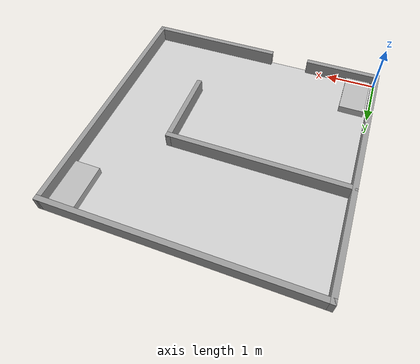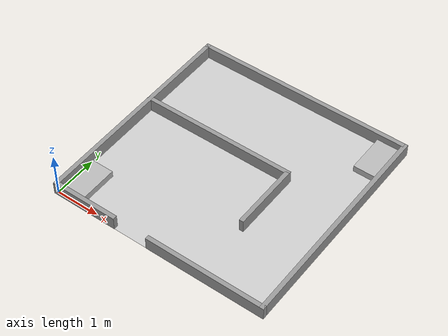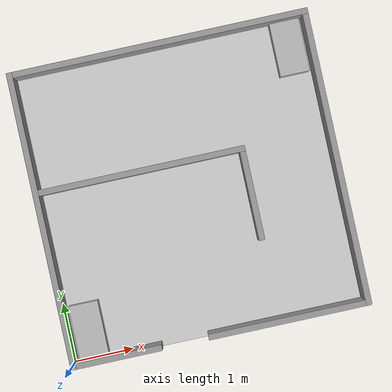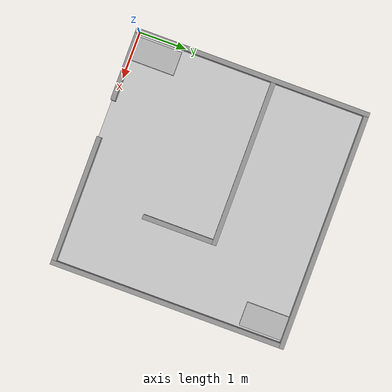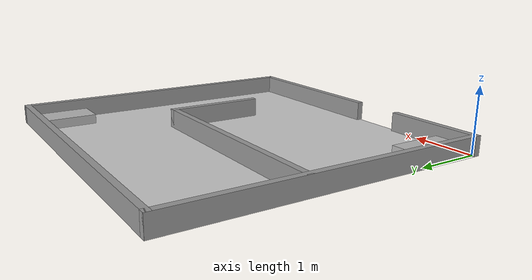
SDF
<sdf version="1.6">
 <world name="default">
  <light name="sun" type="directional">
   <pose>0 0 10 0 -0 0</pose>
   <diffuse>0.8 0.8 0.8 1</diffuse>
   <specular>0.2 0.2 0.2 1</specular>
   <attenuation>
    <range>1000</range>
    <constant>0.9</constant>
    <linear>0.01</linear>
    <quadratic>0.001</quadratic>
   </attenuation>
   <direction>-0.5 0.1 -0.9</direction>
  </light>
  <gravity>0 0 -9.8</gravity>
  <magnetic_field>6e-06 2.3e-05 -4.2e-05</magnetic_field>
  <atmosphere type="adiabatic"/>
  <physics name="default_physics" default="0" type="ode">
   <max_step_size>0.001</max_step_size>
   <real_time_factor>1</real_time_factor>
   <real_time_update_rate>1000</real_time_update_rate>
  </physics>
  <scene><ambient>0.4 0.4 0.4 1</ambient><background>0.7 0.7 0.7 1</background><shadows>1</shadows></scene>
  <audio><device>default</device></audio>
  <spherical_coordinates>
   <surface_model>EARTH_WGS84</surface_model>
   <latitude_deg>0</latitude_deg>
   <longitude_deg>0</longitude_deg>
   <elevation>0</elevation>
   <heading_deg>0</heading_deg>
  </spherical_coordinates>
  <model name="base_structure_5x5">
   <pose>2.49962 2.44211 0 0 -0 0</pose>
   <link name="Wall_0">
    <collision name="Wall_0_Collision">
     <geometry><box><size>5.03 0.1 0.3</size></box></geometry>
     <pose>0 0 0.15 0 -0 0</pose>
    </collision>
    <visual name="Wall_0_Visual">
     <pose>0 0 0.15 0 -0 0</pose>
     <geometry><box><size>5.03 0.1 0.3</size></box></geometry>
     <material>
      <script><uri>file://media/materials/scripts/gazebo.material</uri><name>Gazebo/Grey</name></script>
      <ambient>1 1 1 1</ambient>
     </material>
     <meta><layer>0</layer></meta>
    </visual>
    <pose>-2.5 0 0 0 -0 1.5708</pose>
   </link>
   <link name="Wall_2">
    <collision name="Wall_2_Collision">
     <geometry><box><size>5.1 0.1 0.3</size></box></geometry>
     <pose>0 0 0.15 0 -0 0</pose>
    </collision>
    <visual name="Wall_2_Visual">
     <pose>0 0 0.15 0 -0 0</pose>
     <geometry><box><size>5.1 0.1 0.3</size></box></geometry>
     <material>
      <script><uri>file://media/materials/scripts/gazebo.material</uri><name>Gazebo/Grey</name></script>
      <ambient>1 1 1 1</ambient>
     </material>
     <meta><layer>0</layer></meta>
    </visual>
    <pose>0 2.465 0 0 -0 0</pose>
   </link>
   <link name="Wall_3">
    <collision name="Wall_3_Collision">
     <geometry><box><size>5.03 0.1 0.3</size></box></geometry>
     <pose>0 0 0.15 0 -0 0</pose>
    </collision>
    <visual name="Wall_3_Visual">
     <pose>0 0 0.15 0 -0 0</pose>
     <geometry><box><size>5.03 0.1 0.3</size></box></geometry>
     <material>
      <script><uri>file://media/materials/scripts/gazebo.material</uri><name>Gazebo/Grey</name></script>
      <ambient>1 1 1 1</ambient>
     </material>
     <meta><layer>0</layer></meta>
    </visual>
    <pose>2.5 0 0 0 -0 -1.5708</pose>
   </link>
   <link name="Wall_4">
    <collision name="Wall_4_Collision">
     <geometry><box><size>2.76 0.1 0.3</size></box></geometry>
     <pose>0 0 0.15 0 -0 0</pose>
    </collision>
    <visual name="Wall_4_Visual">
     <pose>0 0 0.15 0 -0 0</pose>
     <geometry><box><size>2.76 0.1 0.3</size></box></geometry>
     <material>
      <script><uri>file://media/materials/scripts/gazebo.material</uri><name>Gazebo/Grey</name></script>
      <ambient>1 1 1 1</ambient>
     </material>
     <meta><layer>0</layer></meta>
    </visual>
    <pose>1.17 -2.465 0 0 -0 3.14159</pose>
   </link>
   <link name="Wall_6">
    <collision name="Wall_6_Collision">
     <geometry><box><size>1.55 0.1 0.3</size></box></geometry>
     <pose>0 0 0.15 0 -0 0</pose>
    </collision>
    <visual name="Wall_6_Visual">
     <pose>0 0 0.15 0 -0 0</pose>
     <geometry><box><size>1.55 0.1 0.3</size></box></geometry>
     <material>
      <script><uri>file://media/materials/scripts/gazebo.material</uri><name>Gazebo/Grey</name></script>
      <ambient>1 1 1 1</ambient>
     </material>
     <meta><layer>0</layer></meta>
    </visual>
    <pose>-1.775 -2.465 0 0 -0 0</pose>
   </link>
   <link name="Wall_8">
    <collision name="Wall_8_Collision">
     <geometry><box><size>3.6 0.1 0.3</size></box></geometry>
     <pose>0 0 0.15 0 -0 0</pose>
    </collision>
    <visual name="Wall_8_Visual">
     <pose>0 0 0.15 0 -0 0</pose>
     <geometry><box><size>3.6 0.1 0.3</size></box></geometry>
     <material>
      <script><uri>file://media/materials/scripts/gazebo.material</uri><name>Gazebo/Grey</name></script>
      <ambient>1 1 1 1</ambient>
     </material>
     <meta><layer>0</layer></meta>
    </visual>
    <pose>-0.75 0.465 0 0 -0 0</pose>
   </link>
   <link name="Wall_9">
    <collision name="Wall_9_Collision">
     <geometry><box><size>1.6 0.1 0.3</size></box></geometry>
     <pose>0 0 0.15 0 -0 0</pose>
    </collision>
    <visual name="Wall_9_Visual">
     <pose>0 0 0.15 0 -0 0</pose>
     <geometry><box><size>1.6 0.1 0.3</size></box></geometry>
     <material>
      <script><uri>file://media/materials/scripts/gazebo.material</uri><name>Gazebo/Grey</name></script>
      <ambient>1 1 1 1</ambient>
     </material>
     <meta><layer>0</layer></meta>
    </visual>
    <pose>1 -0.285 0 0 -0 -1.5708</pose>
   </link>
   <static>1</static>
  </model>
  <model name="ground_1">
   <static>1</static>
   <link name="link">
    <collision name="collision">
     <geometry><plane><normal>0 0 1</normal><size>100 100</size></plane></geometry>
     <surface><friction><ode><mu>100</mu><mu2>50</mu2></ode></friction></surface>
    </collision>
    <visual name="visual">
     <cast_shadows>0</cast_shadows>
     <geometry><plane><normal>0 0 1</normal><size>5 5</size></plane></geometry>
     <material>
      <script>
       <uri>model://ground_1/materials/scripts</uri>
       <uri>model://ground_1/materials/textures</uri>
       <name>Ground_wood/Image</name>
      </script>
     </material>
    </visual>
    <kinematic>true</kinematic>
   </link>
   <pose>2.54322 2.4368 0 0 -0 0</pose>
  </model>
  <light name="user_spot_light_0" type="spot">
   <pose>4.56544 4.45683 1 0 -0 0</pose>
   <diffuse>0.5 0.5 0.5 1</diffuse>
   <specular>0.1 0.1 0.1 1</specular>
   <direction>0 0 -1</direction>
   <attenuation>
    <range>20</range>
    <constant>0.5</constant>
    <linear>0.01</linear>
    <quadratic>0.001</quadratic>
   </attenuation>
   <cast_shadows>0</cast_shadows>
   <spot><inner_angle>0.6</inner_angle><outer_angle>1</outer_angle><falloff>1</falloff></spot>
  </light>
  <light name="user_spot_light_1" type="spot">
   <pose>4.48061 0.558177 1 0 -0 0</pose>
   <diffuse>0.5 0.5 0.5 1</diffuse>
   <specular>0.1 0.1 0.1 1</specular>
   <direction>0 0 -1</direction>
   <attenuation>
    <range>20</range>
    <constant>0.5</constant>
    <linear>0.01</linear>
    <quadratic>0.001</quadratic>
   </attenuation>
   <cast_shadows>0</cast_shadows>
   <spot><inner_angle>0.6</inner_angle><outer_angle>1</outer_angle><falloff>1</falloff></spot>
  </light>
  <light name="user_spot_light_2" type="spot">
   <pose>0.38853 1.89089 1 0 -0 0</pose>
   <diffuse>0.5 0.5 0.5 1</diffuse>
   <specular>0.1 0.1 0.1 1</specular>
   <direction>0 0 -1</direction>
   <attenuation>
    <range>20</range>
    <constant>0.5</constant>
    <linear>0.01</linear>
    <quadratic>0.001</quadratic>
   </attenuation>
   <cast_shadows>0</cast_shadows>
   <spot><inner_angle>0.6</inner_angle><outer_angle>1</outer_angle><falloff>1</falloff></spot>
  </light>
  <light name="user_spot_light_3" type="spot">
   <pose>0.505432 0.586944 1 0 -0 0</pose>
   <diffuse>0.5 0.5 0.5 1</diffuse>
   <specular>0.1 0.1 0.1 1</specular>
   <direction>0 0 -1</direction>
   <attenuation>
    <range>20</range>
    <constant>0.5</constant>
    <linear>0.01</linear>
    <quadratic>0.001</quadratic>
   </attenuation>
   <cast_shadows>0</cast_shadows>
   <spot><inner_angle>0.6</inner_angle><outer_angle>1</outer_angle><falloff>1</falloff></spot>
  </light>
  <light name="user_spot_light_4" type="spot">
   <pose>0.50521 4.43651 1 0 -0 0</pose>
   <diffuse>0.5 0.5 0.5 1</diffuse>
   <specular>0.1 0.1 0.1 1</specular>
   <direction>0 0 -1</direction>
   <attenuation>
    <range>20</range>
    <constant>0.5</constant>
    <linear>0.01</linear>
    <quadratic>0.001</quadratic>
   </attenuation>
   <cast_shadows>0</cast_shadows>
   <spot><inner_angle>0.6</inner_angle><outer_angle>1</outer_angle><falloff>1</falloff></spot>
  </light>
  <light name="user_spot_light_5" type="spot">
   <pose>2.49823 4.48669 1 0 -0 0</pose>
   <diffuse>0.5 0.5 0.5 1</diffuse>
   <specular>0.1 0.1 0.1 1</specular>
   <direction>0 0 -1</direction>
   <attenuation>
    <range>20</range>
    <constant>0.5</constant>
    <linear>0.01</linear>
    <quadratic>0.001</quadratic>
   </attenuation>
   <cast_shadows>0</cast_shadows>
   <spot><inner_angle>0.6</inner_angle><outer_angle>1</outer_angle><falloff>1</falloff></spot>
  </light>
  <light name="user_spot_light_6" type="spot">
   <pose>2.91635 2.45444 1 0 -0 0</pose>
   <diffuse>0.5 0.5 0.5 1</diffuse>
   <specular>0.1 0.1 0.1 1</specular>
   <direction>0 0 -1</direction>
   <attenuation>
    <range>20</range>
    <constant>0.5</constant>
    <linear>0.01</linear>
    <quadratic>0.001</quadratic>
   </attenuation>
   <cast_shadows>0</cast_shadows>
   <spot><inner_angle>0.6</inner_angle><outer_angle>1</outer_angle><falloff>1</falloff></spot>
  </light>
  <model name="plateau">
   <link name="plateau_2">
    <inertial>
     <pose>0 -0 0.075 0 -0 0</pose>
     <mass>67.5</mass>
     <inertia>
      <ixx>1.5328</ixx>
      <ixy>5.6668e-16</ixy>
      <ixz>3.16887e-32</ixz>
      <iyy>4.6828</iyy>
      <iyz>7.83564e-17</iyz>
      <izz>5.9625</izz>
     </inertia>
    </inertial>
    <kinematic>true</kinematic>
    <collision name="plateau_2_collision">
     <pose>0 0 0 1.5708 -0 0</pose>
     <geometry>
      <mesh>
       <scale>1 1 1</scale>
       <uri>/home/ros/catkin_ws/src/ARMinor-2020-Robocupatwork/Suii/suii_description/Field/plateau/meshes/plateau.STL</uri>
      </mesh>
     </geometry>
    </collision>
    <visual name="plateau_2_visual">
     <pose>0 0 0 1.5708 -0 0</pose>
     <geometry>
      <mesh>
       <scale>1 1 1</scale>
       <uri>/home/ros/catkin_ws/src/ARMinor-2020-Robocupatwork/Suii/suii_description/Field/plateau/meshes/plateau.STL</uri>
      </mesh>
     </geometry>
    </visual>
    <kinematic>true</kinematic>
   </link>
   <pose>0.35 0.5 -6e-06 2.2e-05 -0 1.57</pose>
  </model>
  <model name="plateau_2">
   <link name="plateau_2">
    <inertial>
     <pose>0 -0 0.075 0 -0 0</pose>
     <mass>67.5</mass>
     <inertia>
      <ixx>1.5328</ixx>
      <ixy>5.6668e-16</ixy>
      <ixz>3.16887e-32</ixz>
      <iyy>4.6828</iyy>
      <iyz>7.83564e-17</iyz>
      <izz>5.9625</izz>
     </inertia>
    </inertial>
    <kinematic>true</kinematic>
    <collision name="plateau_2_collision">
     <pose>0 0 0 1.5708 -0 0</pose>
     <geometry>
      <mesh>
       <scale>1 1 1</scale>
       <uri>/home/ros/catkin_ws/src/ARMinor-2020-Robocupatwork/Suii/suii_description/Field/plateau/meshes/plateau.STL</uri>
      </mesh>
     </geometry>
    </collision>
    <visual name="plateau_2_visual">
     <pose>0 0 0 1.5708 -0 0</pose>
     <geometry>
      <mesh>
       <scale>1 1 1</scale>
       <uri>/home/ros/catkin_ws/src/ARMinor-2020-Robocupatwork/Suii/suii_description/Field/plateau/meshes/plateau.STL</uri>
      </mesh>
     </geometry>
    </visual>
    <kinematic>true</kinematic>
   </link>
   <pose>4.65 4.4 -6e-06 -2.9e-05 -0 1.57</pose>
  </model>
 </world>
</sdf>
